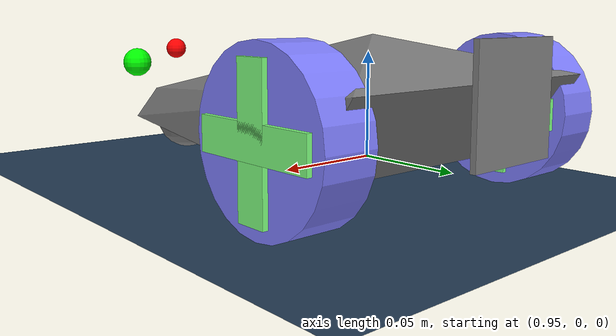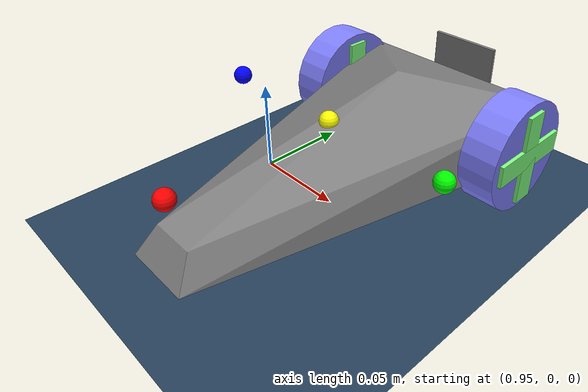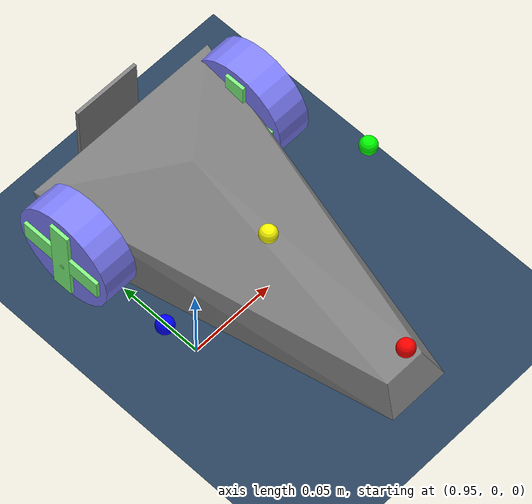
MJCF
<mujoco>

  <asset>
    <texture name="grid" type="2d" builtin="checker" width="512" height="512" rgb1=".1 .2 .3" rgb2=".2 .3 .4"/>
    <material name="grid" texture="grid" texrepeat="1 1" texuniform="true" reflectance=".2"/>
    <texture name="qr" type="2d" builtin="checker" width="32" height="32" rgb1="0 0 0" rgb2="1 1 1"/>
    <material name="qr_material" texture="qr" texrepeat="1 1" texuniform="true" rgba="1 1 1 1"/>
    <mesh name="chasis" scale=".01 .006 .0015"
      vertex="9   2   0
              -10  10  10
              9  -2   0
              10  3  -10
              10 -3  -10
              -8   10 -10
              -10 -10  10
              -8  -10 -10
              -5   0   20"/>
  </asset>

  <default>
    <joint damping=".03" actuatorfrcrange="-0.5 0.5"/>
    <default class="wheel">
      <geom type="cylinder" size=".03 .01" rgba=".5 .5 1 1"/>
    </default>
    <default class="decor">
      <site type="box" rgba=".5 1 .5 1"/>
    </default>
  </default>

  <worldbody>

    <geom type="plane" size="3 3 .01" material="grid"/>
    <body name="car1" pos="1.0 0.0 .03" euler="0 0 270">
    <camera name="front_cam" mode="fixed" pos="0.1 0 0.1" euler="0 -50 270" fovy="120"/>

      <freejoint/>
      <geom name="chasis" type="mesh" mesh="chasis"/>
      <geom name="qr_code_geom" type="box" size=".02 .02 .001" pos="-.11 0 .01" material="qr_material" euler="0 90 0"/>
      <geom name="front wheel" pos=".08 0 -.015" type="sphere" size=".015" condim="1" priority="1"/>
      <light name="front light" pos=".1 0 .02" dir="2 0 -1" diffuse="1 1 1"/>
      <body name="left wheel" pos="-.07 .06 0" zaxis="0 1 0">
        <joint name="left"/>
        <geom class="wheel"/>
        <site class="decor" size=".006 .025 .012"/>
        <site class="decor" size=".025 .006 .012"/>
      </body>
      <body name="right wheel" pos="-.07 -.06 0" zaxis="0 1 0">
        <joint name="right"/>
        <geom class="wheel"/>
        <site class="decor" size=".006 .025 .012"/>
        <site class="decor" size=".025 .006 .012"/>
      </body>

    <!-- Новый site для IMU -->
    <site name="imu" pos="0 0 0.02" size="0.005" rgba="1 1 0 1"/>
    <!-- Сенсоры расстояния / касания -->
    <site name="sensor_front" pos="0.09 0 0.02" size="0.005" rgba="1 0 0 1"/>
    <site name="sensor_left"  pos="0 0.07 0.02" size="0.005" rgba="0 1 0 1"/>
    <site name="sensor_right" pos="0 -0.07 0.02" size="0.005" rgba="0 0 1 1"/>

    </body>
  </worldbody>

  <tendon>
    <fixed name="forward">
      <joint joint="left" coef=".5"/>
      <joint joint="right" coef=".5"/>
    </fixed>
    <fixed name="turn">
      <joint joint="left" coef="-.5"/>
      <joint joint="right" coef=".5"/>
    </fixed>
  </tendon>

  <actuator>
    <motor name="forward" tendon="forward" ctrlrange="-1 1"/>
    <motor name="turn" tendon="turn" ctrlrange="-1 1"/>
  </actuator>

  <sensor>
    <!-- Датчики нагрузки на двигатели -->
    <jointactuatorfrc name="right" joint="right"/>
    <jointactuatorfrc name="left" joint="left"/>

    <!-- Гироскоп -->
    <gyro name="gyro" site="imu"/>

    <!-- Акселерометр -->
    <accelerometer name="accel" site="imu"/>

    <!-- Лазерные дальномеры -->
    <rangefinder name="range_front" site="sensor_front"/>
    <rangefinder name="range_left" site="sensor_left"/>
    <rangefinder name="range_right" site="sensor_right"/>

    <!-- Сенсоры контакта (тач-сенсоры) -->
    <touch name="touch_front" site="sensor_front"/>
    <touch name="touch_left" site="sensor_left"/>
    <touch name="touch_right" site="sensor_right"/>

  </sensor>
</mujoco>
